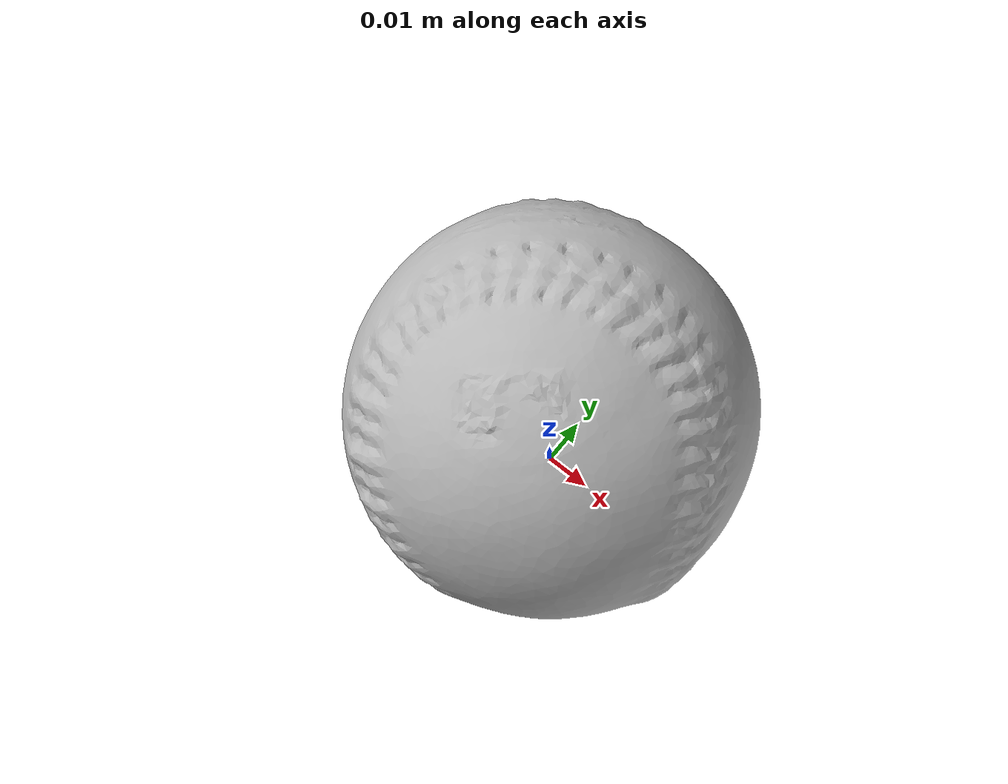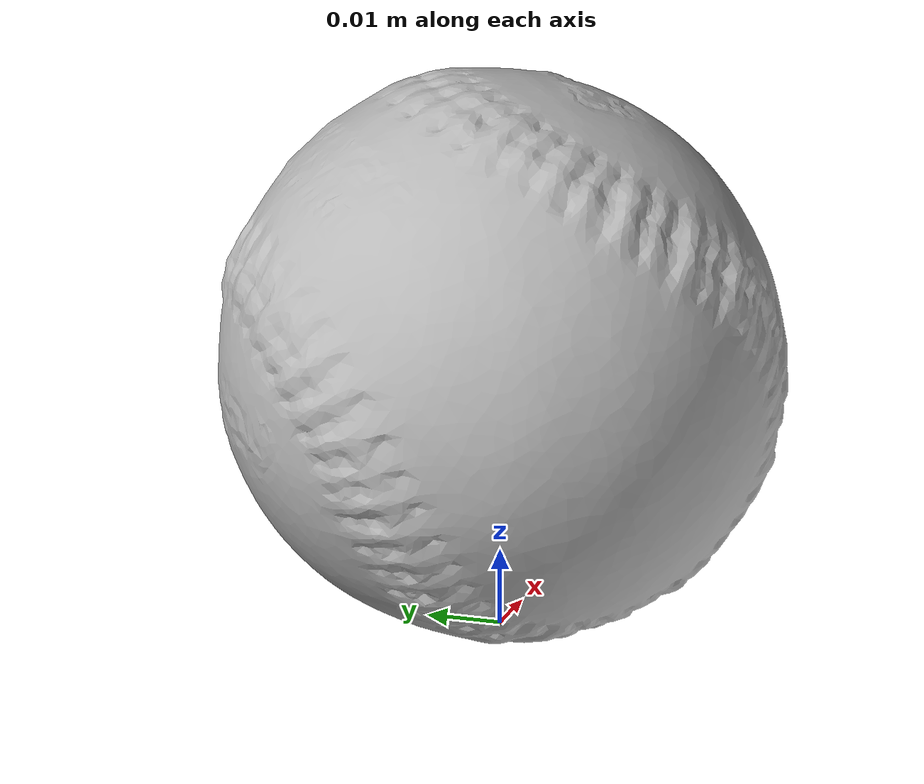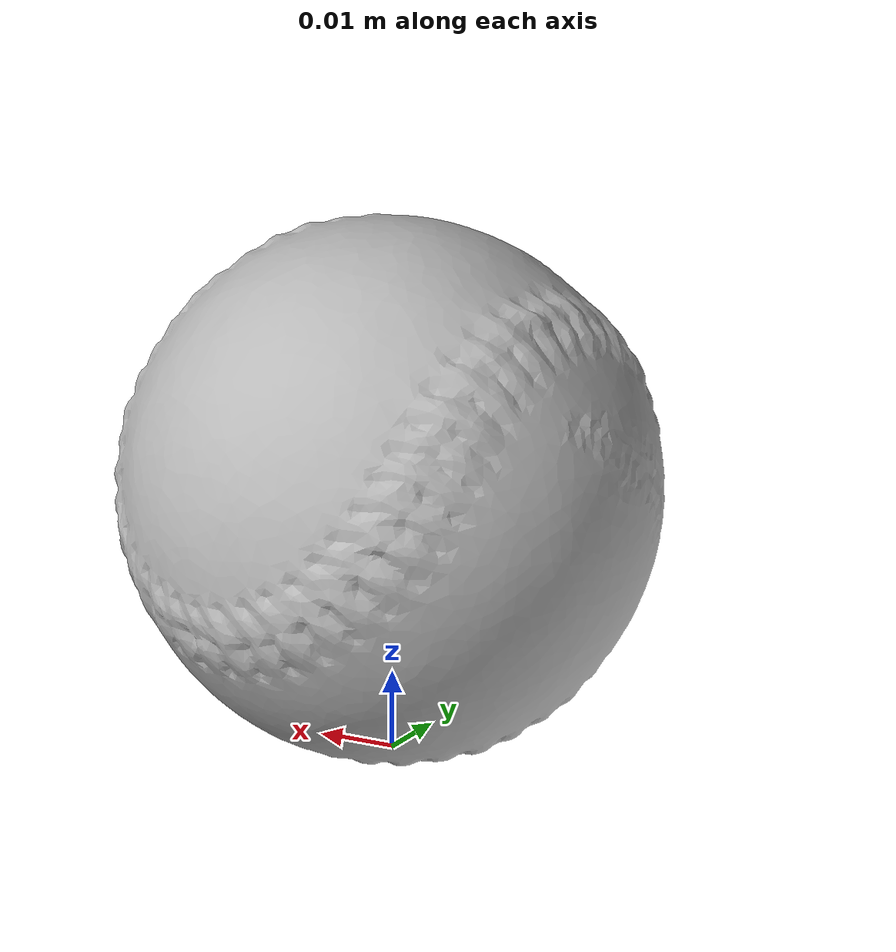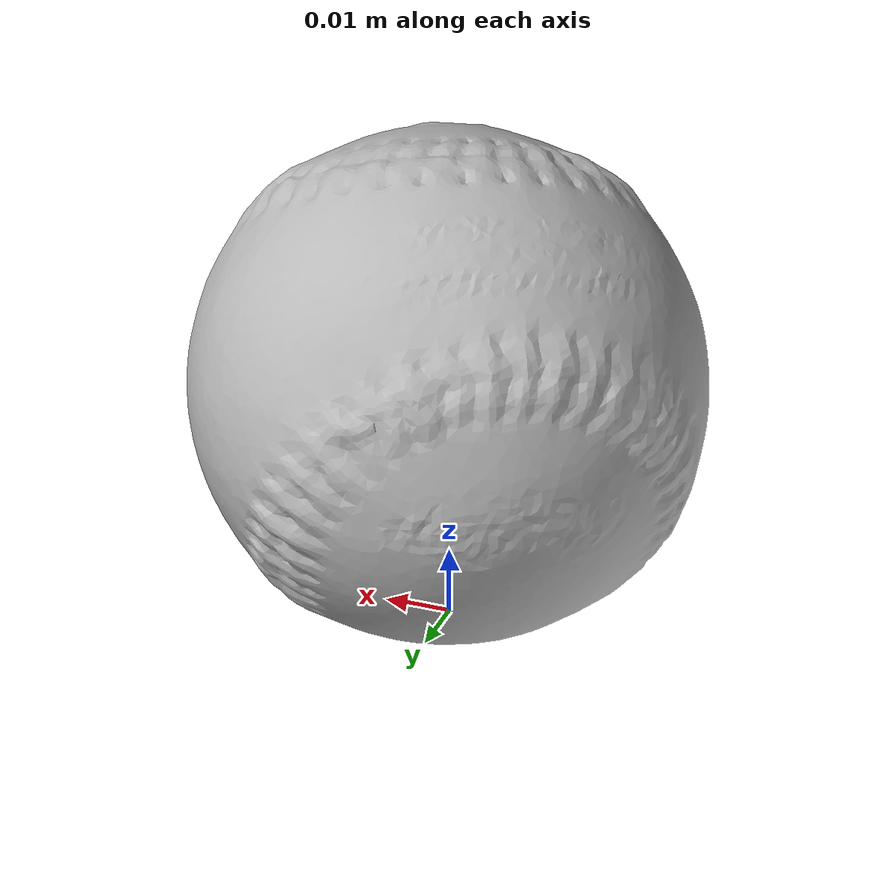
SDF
<?xml version="1.0" ?>
<sdf version='1.8'>
  <model name='ycb_055_baseball'>
    <link name='body'>
      <inertial>
        <mass>0.138</mass>
        <pose>0.000123015023 0.000111764269 0.0360936476 0 0 0</pose>
        <inertia>
          <ixx>7.32787408589e-05</ixx>
          <ixy>-4.09696067826e-08</ixy>
          <ixz>-1.20502147757e-08</ixz>
          <iyy>7.34638842968e-05</iyy>
          <iyz>-3.09741664184e-07</iyz>
          <izz>7.32633295709e-05</izz>
        </inertia>
      </inertial>
      <visual name='ycb_055_baseball_visual'>
        <pose>0.010071 0.048228 0.000167 0 0 0</pose>
        <geometry>
          <mesh>
            <uri>model://ycb_055_baseball/meshes/textured.dae</uri>
          </mesh>
        </geometry>
      </visual>
      <collision name='ycb_055_baseball_collision'>
        <pose>0.010071 0.048228 0.000167 0 0 0</pose>
        <geometry>
          <mesh>
            <uri>model://ycb_055_baseball/meshes/nontextured.stl</uri>
          </mesh>
        </geometry>
        <max_contacts>10</max_contacts>
        <surface>
          <contact>
            <ode>
              <kp>1e15</kp>
              <kd>1e13</kd>
            </ode>
          </contact>
        </surface>
      </collision>
    </link>
  </model>
</sdf>
